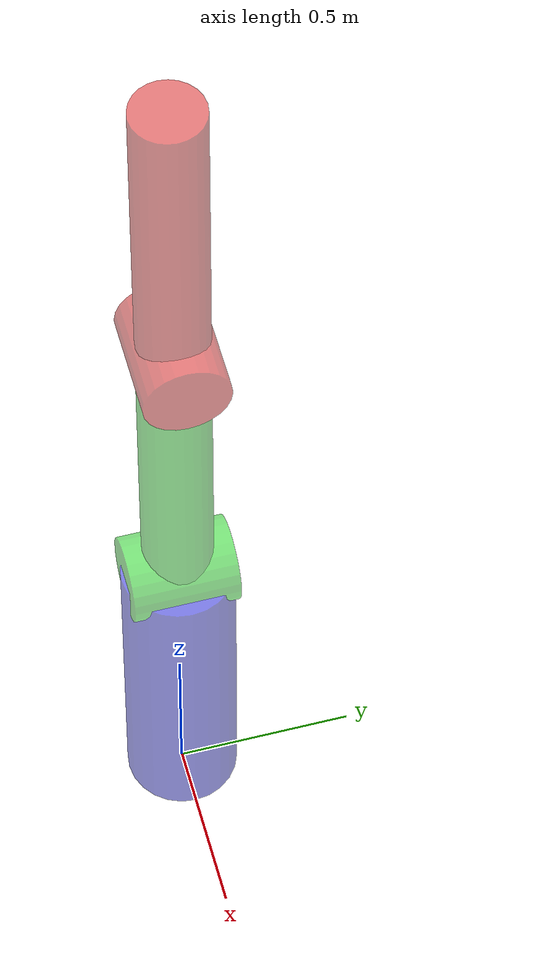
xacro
<?xml version="1.0"?>
<robot xmlns:xacro="http://ros.org/wiki/xacro" name="arm3">
  <xacro:property name="M_PI" value="3.1415926535897931" />
  <link name="arm3"/>
  <joint name="JOINT1" type="revolute">
    <origin xyz=" 0.0 0.0 0.0"/>
    <axis xyz="0.0 0.0 1.0"/>
    <parent link="arm3"/>
    <child link="SOLID1"/>
    <limit effort="1000.0" lower="-3.14" upper="3.14" velocity="628.318530718"/>
  </joint>
  <link name="SOLID1">
    <inertial>
      <origin xyz=" 0.0 0.0 0.5"/>
      <mass value="1"/>
      <inertia ixx="1" iyy="1" izz="1" ixy="0" ixz="0" iyz="0"/>
    </inertial>
    <visual>
      <origin xyz=" 0.0 0.0 0.5"/>
      <geometry>
        <cylinder length="1.0" radius="0.16"/>
      </geometry>
      <material name="blue">
        <color rgba="0 0 0.8 0.5"/>
      </material>
    </visual>
  </link>
  <joint name="JOINT2" type="revolute">
    <origin xyz="0.0 0.0 1.0"/>
    <axis xyz="0.0 1.0 0.0"/>
    <parent link="SOLID1"/>
    <child link="SOLID2"/>
    <limit effort="1000.0" lower="-3.14" upper="3.14" velocity="628.318530718"/>
  </joint>
  <link name="SOLID2">
    <inertial>
      <origin xyz="0.0 0.0 0.5"/>
      <mass value="1"/>
      <inertia ixx="1" iyy="1" izz="1" ixy="0" ixz="0" iyz="0"/>
    </inertial>
    <visual>
      <origin xyz="0.0 0.0 0.5"/>
      <geometry>
        <cylinder length="1.0" radius="0.1"/>
      </geometry>
      <material name="green">
        <color rgba="0 0.8 0 0.5"/>
      </material>
    </visual>
    <visual>
      <origin rpy="${M_PI/2} 0 0"/>
      <geometry>
        <cylinder length="0.3" radius="0.12"/>
      </geometry>
      <material name="green"/>
    </visual>
  </link>
  <joint name="JOINT3" type="revolute">
    <origin xyz="0.0 0.0 1.0"/>
    <axis xyz="1.0 0.0 0.0"/>
    <parent link="SOLID2"/>
    <child link="SOLID3"/>
    <limit effort="1000.0" lower="-3.14" upper="3.14" velocity="628.318530718"/>
  </joint>
  <link name="SOLID3">
    <inertial>
      <origin xyz="0.0 0.0 0.5"/>
      <mass value="1"/>
      <inertia ixx="1" iyy="1" izz="1" ixy="0" ixz="0" iyz="0"/>
    </inertial>
    <visual>
      <origin xyz="0.0 0.0 0.5"/>
      <geometry>
        <cylinder length="1.0" radius="0.1"/>
      </geometry>
      <material name="red">
        <color rgba="0.8 0 0 0.5"/>
      </material>
    </visual>
    <visual>
      <origin rpy="0 ${M_PI/2} 0"/>
      <geometry>
        <cylinder length="0.3" radius="0.12"/>
      </geometry>
      <material name="red"/>
    </visual>
  </link>
  <joint name="FIXED" type="fixed">
    <origin xyz="0.0 0.0 1.0"/>
    <parent link="SOLID3"/>
    <child link="FRAME0"/>
  </joint>
  <link name="FRAME0"/>
</robot>
